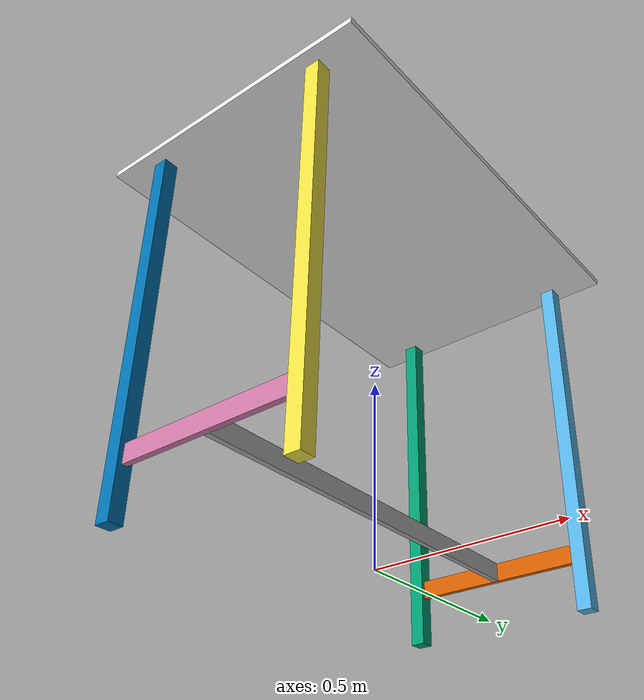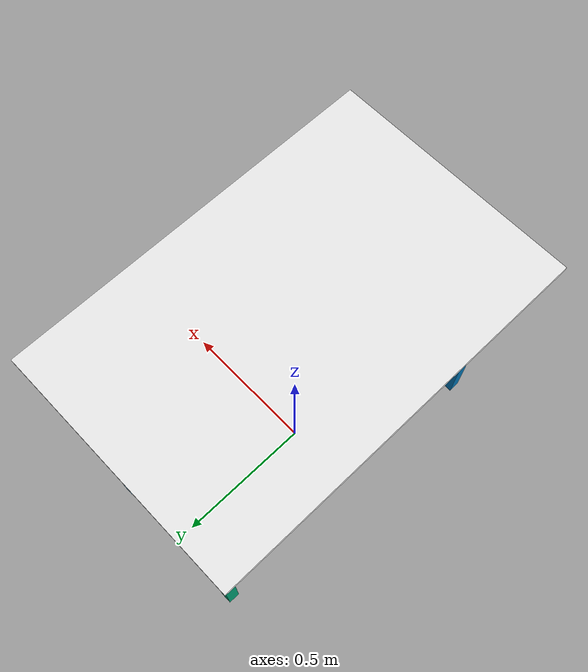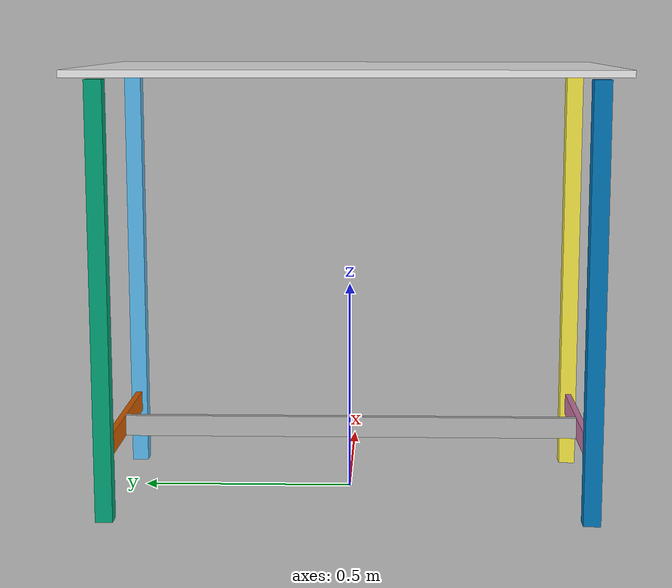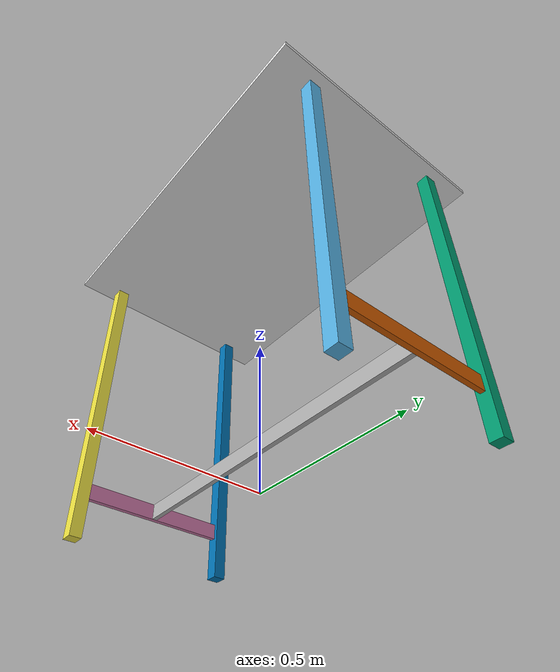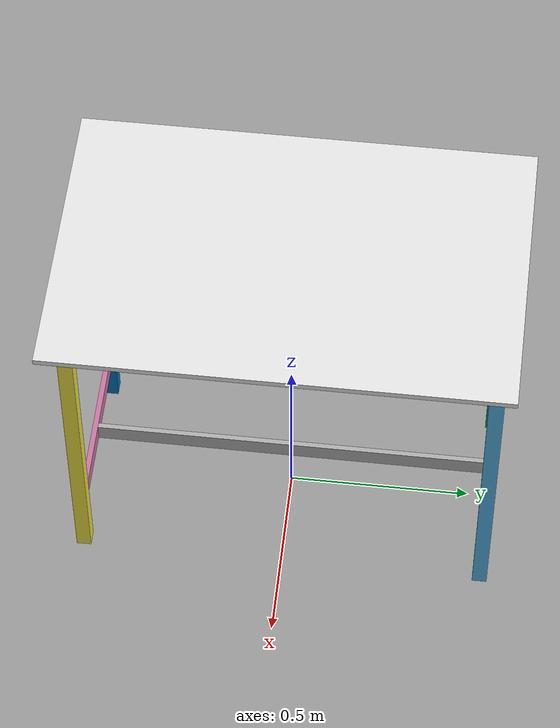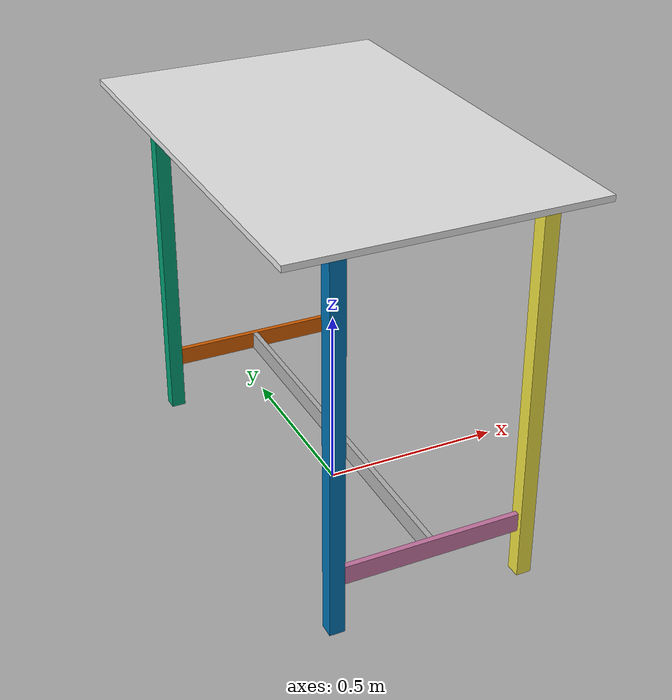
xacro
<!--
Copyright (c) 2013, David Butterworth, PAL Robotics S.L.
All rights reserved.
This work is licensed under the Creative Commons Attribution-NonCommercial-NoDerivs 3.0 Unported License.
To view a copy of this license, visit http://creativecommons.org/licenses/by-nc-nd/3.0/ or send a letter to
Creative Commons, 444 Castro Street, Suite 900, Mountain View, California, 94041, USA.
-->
<?xml version="1.0"?>

<robot name="table"
       xmlns:xi="http://www.w3.org/2001/XInclude"
       xmlns:gazebo="http://playerstage.sourceforge.net/gazebo/xmlschema/#gz"
       xmlns:model="http://playerstage.sourceforge.net/gazebo/xmlschema/#model"
       xmlns:sensor="http://playerstage.sourceforge.net/gazebo/xmlschema/#sensor"
       xmlns:body="http://playerstage.sourceforge.net/gazebo/xmlschema/#body"
       xmlns:geom="http://playerstage.sourceforge.net/gazebo/xmlschema/#geom"
       xmlns:joint="http://playerstage.sourceforge.net/gazebo/xmlschema/#joint"
       xmlns:interface="http://playerstage.sourceforge.net/gazebo/xmlschema/#interface"
       xmlns:rendering="http://playerstage.sourceforge.net/gazebo/xmlschema/#rendering"
       xmlns:renderable="http://playerstage.sourceforge.net/gazebo/xmlschema/#renderable"
       xmlns:controller="http://playerstage.sourceforge.net/gazebo/xmlschema/#controller"
       xmlns:physics="http://playerstage.sourceforge.net/gazebo/xmlschema/#physics">

  <property name="table_height" value="1.02" />
  <property name="table_width" value="0.80" />
  <property name="table_depth" value="1.21" />
  <property name="leg_radius" value="0.04" /> <!-- actually square legs -->
  <property name="table_x" value="0.0" />
  <property name="table_y" value="0.0" />
  <property name="table_z" value="0.0" />

  <property name="table_top_thickness" value="0.016"/> <!-- 16mm thick laminated table -->

  <property name="leg_width_inset" value="0.12" /> <!-- Legs are inset 12cm from front/back -->
  <property name="leg_depth_inset" value="0.03" /> <!-- Legs are inset 3cm from ends of table -->

  <property name="support_width" value="0.015" /> <!-- thickness of lower support bars -->
  <property name="support_height" value="0.050" /> <!-- height of support bars from ground -->
  <property name="support_from_ground" value="0.140" />
  <property name="end_supports_length" value="0.480" /> <!-- 80cm - 2x12 - 2x4 -->
  <property name="middle_support_length" value="1.095" /> <!-- 121cm - 2x3 - 2x2 - 0.015 -->

  <property name="M_PI" value="3.1415926535897931" />

  <!-- tabletop height is .55+.01+.025=.585 -->
  <link name="table_top_link">
    <inertial>
      <mass value="4.0" />
      <origin xyz="${table_x} ${table_y} ${table_z+table_height-table_top_thickness/2}" />
      <inertia ixx="1" ixy="0"  ixz="0"
               iyy="1" iyz="0"
               izz="1" />
    </inertial>
    <visual>
      <origin xyz="${table_x} ${table_y} ${table_z+table_height-table_top_thickness/2}" />
      <geometry>
        <box size="${table_width} ${table_depth} ${table_top_thickness}" />
      </geometry>
    </visual>
    <collision>
      <origin xyz="${table_x} ${table_y} ${table_z+table_height-table_top_thickness/2}" />
      <geometry>
        <box size="${table_width} ${table_depth} ${table_top_thickness}" />
      </geometry>
    </collision>
  </link>
  <gazebo reference="table_top_link">
    <material>Custom/white_laminated1</material>
    <mu1>50.0</mu1>
    <mu2>50.0</mu2>
    <kp>1000000.0</kp>
    <kd>1.0</kd>
  </gazebo>

  <!-- rear-left leg -->
  <joint name="leg1_joint" type="fixed" >
    <parent link="table_top_link" />
    <origin xyz="${table_x+table_width/2 - leg_radius/2 - leg_width_inset} ${table_y+table_depth/2 - leg_radius/2 - leg_depth_inset} ${table_z+table_height - table_top_thickness}" rpy="0 0 0" />
    <child link="leg1_link" />
  </joint>
  <link name="leg1_link">
    <inertial>
      <mass value="1.0" />
      <origin xyz="0 0 ${-table_height/2}" />
      <inertia ixx="0.1" ixy="0"  ixz="0"
               iyy="0.1" iyz="0"
               izz="0.01" />
    </inertial>
    <visual>
      <origin xyz="0.0 0.0 ${-table_height/2}" rpy="0 0 0" />
      <geometry>
        <box size="${leg_radius} ${leg_radius} ${table_height - table_top_thickness}"/>
      </geometry>
    </visual>
    <collision>
      <origin xyz="0.0 0.0 ${-table_height/2}" rpy="0.0 0.0 0.0" />
      <geometry>
        <box size="${leg_radius} ${leg_radius} ${table_height - table_top_thickness}"/>
      </geometry>
    </collision>
  </link>
  <gazebo reference="leg1_link">
    <material>Custom/brushed_metal1</material>
    <mu1>1000.0</mu1>
    <mu2>1000.0</mu2>
    <kp>10000000.0</kp>
    <kd>1.0</kd>
    <selfCollide>true</selfCollide>
  </gazebo>

  <!-- front-left leg -->
  <joint name="leg2_joint" type="fixed" >
    <parent link="table_top_link" />
    <origin xyz="${table_x-table_width/2 + leg_radius/2 + leg_width_inset} ${table_y+table_depth/2 - leg_radius/2 - leg_depth_inset} ${table_z+table_height - table_top_thickness}" rpy="0 0 0" />
    <child link="leg2_link" />
  </joint>
  <link name="leg2_link">
    <inertial>
      <mass value="1.0" />
      <origin xyz="0 0 ${-table_height/2}" />
      <inertia ixx="0.1" ixy="0"  ixz="0"
               iyy="0.1" iyz="0"
               izz="0.01" />
    </inertial>
    <visual>
      <origin xyz="0.0 0.0 ${-table_height/2}" rpy="0 0 0" />
      <geometry>
        <box size="${leg_radius} ${leg_radius} ${table_height - table_top_thickness}"/>
      </geometry>
    </visual>
    <collision>
      <origin xyz="0.0 0.0 ${-table_height/2}" rpy="0.0 0.0 0.0" />
      <geometry>
        <box size="${leg_radius} ${leg_radius} ${table_height - table_top_thickness}"/>
      </geometry>
    </collision>
  </link>
  <gazebo reference="leg2_link">
    <material>Custom/brushed_metal1</material>
    <mu1>1000.0</mu1>
    <mu2>1000.0</mu2>
    <kp>10000000.0</kp>
    <kd>1.0</kd>
    <selfCollide>true</selfCollide>
  </gazebo>

  <!-- rear-right leg -->
  <joint name="leg3_joint" type="fixed" >
    <parent link="table_top_link" />
    <origin xyz="${table_x+table_width/2 - leg_radius/2 - leg_width_inset} ${table_y-table_depth/2 + leg_radius/2 + leg_depth_inset} ${table_z+table_height - table_top_thickness}" rpy="0 0 0" />
    <child link="leg3_link" />
  </joint>
  <link name="leg3_link">
    <inertial>
      <mass value="1.0" />
      <origin xyz="0 0 ${-table_height/2}" />
      <inertia ixx="0.1" ixy="0"  ixz="0"
               iyy="0.1" iyz="0"
               izz="0.01" />
    </inertial>
    <visual>
      <origin xyz="0.0 0.0 ${-table_height/2}" rpy="0 0 0" />
      <geometry>
        <box size="${leg_radius} ${leg_radius} ${table_height - table_top_thickness}"/>
      </geometry>
    </visual>
    <collision>
      <origin xyz="0.0 0.0 ${-table_height/2}" rpy="0.0 0.0 0.0" />
      <geometry>
        <box size="${leg_radius} ${leg_radius} ${table_height - table_top_thickness}"/>
      </geometry>
    </collision>
  </link>
  <gazebo reference="leg3_link">
    <material>Custom/brushed_metal1</material>
    <mu1>1000.0</mu1>
    <mu2>1000.0</mu2>
    <kp>10000000.0</kp>
    <kd>1.0</kd>
    <selfCollide>true</selfCollide>
  </gazebo>

  <!-- front-right leg -->
  <joint name="leg4_joint" type="fixed" >
    <parent link="table_top_link" />
    <origin xyz="${table_x-table_width/2 + leg_radius/2 + leg_width_inset} ${table_y-table_depth/2 + leg_radius/2 + leg_depth_inset} ${table_z+table_height - table_top_thickness}" rpy="0 0 0" />
    <child link="leg4_link" />
  </joint>
  <link name="leg4_link">
    <inertial>
      <mass value="1.0" />
      <origin xyz="0 0 ${-table_height/2}" />
      <inertia ixx="0.1" ixy="0"  ixz="0"
               iyy="0.1" iyz="0"
               izz="0.01" />
    </inertial>
    <visual>
      <origin xyz="0.0 0.0 ${-table_height/2}" rpy="0 0 0" />
      <geometry>
        <box size="${leg_radius} ${leg_radius} ${table_height - table_top_thickness}"/>
      </geometry>
    </visual>
    <collision>
      <origin xyz="0.0 0.0 ${-table_height/2}" rpy="0.0 0.0 0.0" />
      <geometry>
        <box size="${leg_radius} ${leg_radius} ${table_height - table_top_thickness}"/>
      </geometry>
    </collision>
  </link>
  <gazebo reference="leg4_link">
    <material>Custom/brushed_metal1</material>
    <mu1>1000.0</mu1>
    <mu2>1000.0</mu2>
    <kp>10000000.0</kp>
    <kd>1.0</kd>
    <selfCollide>true</selfCollide>
  </gazebo>
  <gazebo>
    <static>true</static>
    <canonicalBody>table_top_link</canonicalBody>
  </gazebo>

  <joint name="support1_joint" type="fixed" >
    <parent link="leg2_link" />
    <origin xyz="${leg_radius/2} 0.0 ${-table_height + support_from_ground + support_height/2}" rpy="0 0 0" />
    <child link="support1_link" />
  </joint>
  <link name="support1_link">
    <inertial>
      <mass value="1.0" />
      <origin xyz="${end_supports_length/2} 0.0 0.0" />
      <inertia ixx="0.1" ixy="0"  ixz="0"
               iyy="0.1" iyz="0"
               izz="0.01" />
    </inertial>
    <visual>
      <origin xyz="${end_supports_length/2} 0.0 0.0" rpy="0 0 0" />
      <geometry>
        <box size="${end_supports_length} ${support_width} ${support_height}"/>
      </geometry>
    </visual>
    <collision>
      <origin xyz="${end_supports_length/2} 0.0 0.0" rpy="0.0 0.0 0.0" />
      <geometry>
        <box size="${end_supports_length} ${support_width} ${support_height}"/>
      </geometry>
    </collision>
  </link>
  <gazebo reference="support1_link">
    <material>Custom/brushed_metal1</material>
    <mu1>1000.0</mu1>
    <mu2>1000.0</mu2>
    <kp>10000000.0</kp>
    <kd>1.0</kd>
    <selfCollide>true</selfCollide>
  </gazebo>
  <gazebo>
    <static>true</static>
    <canonicalBody>table_top_link</canonicalBody>
  </gazebo>

  <!-- attached to front-right leg   leg4_link-->

<!--
${table_x-table_width/2 + leg_radius/2 + leg_width_inset} ${table_y-table_depth/2 + leg_radius/2 + leg_depth_inset} ${-table_height/2 + support_from_ground + support_height/2}
-->
  <joint name="support2_joint" type="fixed" >
    <parent link="leg4_link" />
    <origin xyz="${leg_radius/2} 0.0 ${-table_height + support_from_ground + support_height/2}" rpy="0 0 0" />
    <child link="support2_link" />
  </joint>
  <link name="support2_link">
    <inertial>
      <mass value="1.0" />
      <origin xyz="${end_supports_length/2} 0.0 0.0" />
      <inertia ixx="0.1" ixy="0"  ixz="0"
               iyy="0.1" iyz="0"
               izz="0.01" />
    </inertial>
    <visual>
      <origin xyz="${end_supports_length/2} 0.0 0.0" rpy="0 0 0" />
      <geometry>
        <box size="${end_supports_length} ${support_width} ${support_height}"/>
      </geometry>
    </visual>
    <collision>
      <origin xyz="${end_supports_length/2} 0.0 0.0" rpy="0.0 0.0 0.0" />
      <geometry>
        <box size="${end_supports_length} ${support_width} ${support_height}"/>
      </geometry>
    </collision>
  </link>
  <gazebo reference="support2_link">
    <material>Custom/brushed_metal1</material>
    <mu1>1000.0</mu1>
    <mu2>1000.0</mu2>
    <kp>10000000.0</kp>
    <kd>1.0</kd>
    <selfCollide>true</selfCollide>
  </gazebo>
  <gazebo>
    <static>true</static>
    <canonicalBody>table_top_link</canonicalBody>
  </gazebo>

  <!-- attached to left end-support -->
  <joint name="middle_support1_joint" type="fixed" >
    <parent link="support1_link" />
    <origin xyz="${end_supports_length/2} ${-support_width/2} 0.0" rpy="0 0 0" />
    <child link="middle_support1_link" />
  </joint>
  <link name="middle_support1_link">
    <inertial>
      <mass value="1.0" />
      <origin xyz="0.0 ${middle_support_length/2} 0.0" />
      <inertia ixx="0.1" ixy="0"  ixz="0"
               iyy="0.1" iyz="0"
               izz="0.01" />
    </inertial>
    <visual>
      <origin xyz="0.0 ${-middle_support_length/2} 0.0" rpy="0 0 0" />
      <geometry>
        <box size="${support_width} ${-middle_support_length} ${support_height}"/>
      </geometry>
    </visual>
    <collision>
      <origin xyz="0.0 ${-middle_support_length/2} 0.0" rpy="0.0 0.0 0.0" />
      <geometry>
        <box size="${support_width} ${-middle_support_length} ${support_height}"/>
      </geometry>
    </collision>
  </link>
  <gazebo reference="middle_support1_link">
    <material>Custom/brushed_metal1</material>
    <mu1>1000.0</mu1>
    <mu2>1000.0</mu2>
    <kp>10000000.0</kp>
    <kd>1.0</kd>
    <selfCollide>true</selfCollide>
  </gazebo>
  <gazebo>
    <static>true</static>
    <canonicalBody>table_top_link</canonicalBody>
  </gazebo>

</robot>
